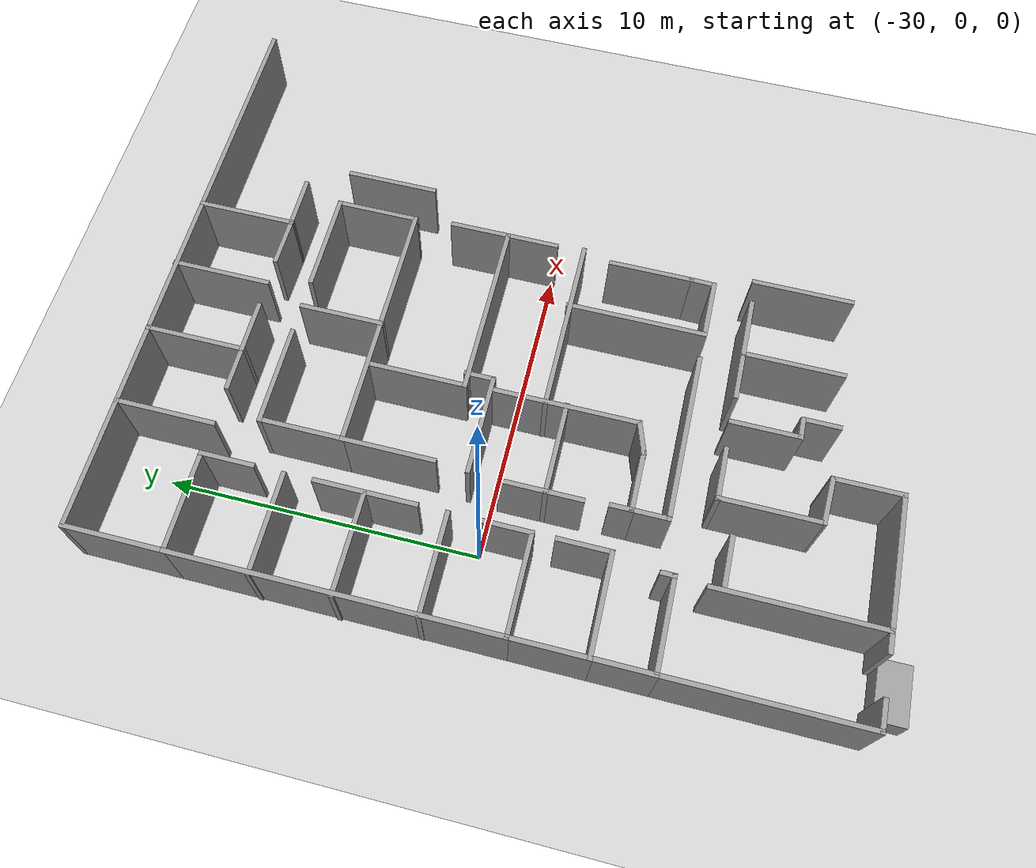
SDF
<sdf version="1.6">
 <world name="default">
  <model name="ground_plane">
   <static>1</static>
   <link name="link">
    <collision name="collision">
     <geometry><plane><normal>0 0 1</normal><size>100 100</size></plane></geometry>
     <surface>
      <contact><collide_bitmask>65535</collide_bitmask></contact>
      <friction><ode><mu>100</mu><mu2>50</mu2></ode></friction>
     </surface>
    </collision>
    <visual name="visual">
     <cast_shadows>0</cast_shadows>
     <geometry><plane><normal>0 0 1</normal><size>100 100</size></plane></geometry>
     <material>
      <script><uri>file://media/materials/scripts/gazebo.material</uri><name>Gazebo/Grey</name></script>
     </material>
    </visual>
   </link>
  </model>
  <model name="large_version">
   <pose>-3.01766 -0.701661 0 0 -0 0</pose>
   <link name="Wall_0">
    <collision name="Wall_0_Collision">
     <geometry><box><size>4.25 0.15 2.5</size></box></geometry>
     <pose>0 0 1.25 0 -0 0</pose>
    </collision>
    <visual name="Wall_0_Visual">
     <pose>0 0 1.25 0 -0 0</pose>
     <geometry><box><size>4.25 0.15 2.5</size></box></geometry>
     <material>
      <script><uri>file://media/materials/scripts/gazebo.material</uri><name>Gazebo/Grey</name></script>
      <ambient>1 1 1 1</ambient>
     </material>
     <meta><layer>0</layer></meta>
    </visual>
    <pose>-27.678 12.4158 0 0 -0 0</pose>
   </link>
   <link name="Wall_1">
    <collision name="Wall_1_Collision">
     <geometry><box><size>3.25 0.15 2.5</size></box></geometry>
     <pose>0 0 1.25 0 -0 0</pose>
    </collision>
    <visual name="Wall_1_Visual">
     <pose>0 0 1.25 0 -0 0</pose>
     <geometry><box><size>3.25 0.15 2.5</size></box></geometry>
     <material>
      <script><uri>file://media/materials/scripts/gazebo.material</uri><name>Gazebo/Grey</name></script>
      <ambient>1 1 1 1</ambient>
     </material>
     <meta><layer>0</layer></meta>
    </visual>
    <pose>-25.628 10.8658 0 0 -0 -1.5708</pose>
   </link>
   <link name="Wall_100">
    <collision name="Wall_100_Collision">
     <geometry><box><size>2 0.15 2.5</size></box></geometry>
     <pose>0 0 1.25 0 -0 0</pose>
    </collision>
    <visual name="Wall_100_Visual">
     <pose>0 0 1.25 0 -0 0</pose>
     <geometry><box><size>2 0.15 2.5</size></box></geometry>
     <material>
      <script><uri>file://media/materials/scripts/gazebo.material</uri><name>Gazebo/Grey</name></script>
      <ambient>1 1 1 1</ambient>
     </material>
     <meta><layer>0</layer></meta>
    </visual>
    <pose>-24.3238 -3.43296 0 0 -0 0</pose>
   </link>
   <link name="Wall_104">
    <collision name="Wall_104_Collision">
     <geometry><box><size>1.11552 0.15 2.5</size></box></geometry>
     <pose>0 0 1.25 0 -0 0</pose>
    </collision>
    <visual name="Wall_104_Visual">
     <pose>0 0 1.25 0 -0 0</pose>
     <geometry><box><size>1.11552 0.15 2.5</size></box></geometry>
     <material>
      <script><uri>file://media/materials/scripts/gazebo.material</uri><name>Gazebo/Grey</name></script>
      <ambient>1 1 1 1</ambient>
     </material>
     <meta><layer>0</layer></meta>
    </visual>
    <pose>-22.9396 -3.2841 0 0 -0 -2.82813</pose>
   </link>
   <link name="Wall_106">
    <collision name="Wall_106_Collision">
     <geometry><box><size>10.25 0.15 2.5</size></box></geometry>
     <pose>0 0 1.25 0 -0 0</pose>
    </collision>
    <visual name="Wall_106_Visual">
     <pose>0 0 1.25 0 -0 0</pose>
     <geometry><box><size>10.25 0.15 2.5</size></box></geometry>
     <material>
      <script><uri>file://media/materials/scripts/gazebo.material</uri><name>Gazebo/Grey</name></script>
      <ambient>1 1 1 1</ambient>
     </material>
     <meta><layer>0</layer></meta>
    </visual>
    <pose>-29.728 4.26583 0 0 -0 -1.5708</pose>
   </link>
   <link name="Wall_107">
    <collision name="Wall_107_Collision">
     <geometry><box><size>3.25 0.15 2.5</size></box></geometry>
     <pose>0 0 1.25 0 -0 0</pose>
    </collision>
    <visual name="Wall_107_Visual">
     <pose>0 0 1.25 0 -0 0</pose>
     <geometry><box><size>3.25 0.15 2.5</size></box></geometry>
     <material>
      <script><uri>file://media/materials/scripts/gazebo.material</uri><name>Gazebo/Grey</name></script>
      <ambient>1 1 1 1</ambient>
     </material>
     <meta><layer>0</layer></meta>
    </visual>
    <pose>-28.178 -0.784168 0 0 -0 0</pose>
   </link>
   <link name="Wall_108">
    <collision name="Wall_108_Collision">
     <geometry><box><size>1.75 0.15 2.5</size></box></geometry>
     <pose>0 0 1.25 0 -0 0</pose>
    </collision>
    <visual name="Wall_108_Visual">
     <pose>0 0 1.25 0 -0 0</pose>
     <geometry><box><size>1.75 0.15 2.5</size></box></geometry>
     <material>
      <script><uri>file://media/materials/scripts/gazebo.material</uri><name>Gazebo/Grey</name></script>
      <ambient>1 1 1 1</ambient>
     </material>
     <meta><layer>0</layer></meta>
    </visual>
    <pose>-26.628 0.015832 0 0 -0 1.5708</pose>
   </link>
   <link name="Wall_11">
    <collision name="Wall_11_Collision">
     <geometry><box><size>12.25 0.15 2.5</size></box></geometry>
     <pose>0 0 1.25 0 -0 0</pose>
    </collision>
    <visual name="Wall_11_Visual">
     <pose>0 0 1.25 0 -0 0</pose>
     <geometry><box><size>12.25 0.15 2.5</size></box></geometry>
     <material>
      <script><uri>file://media/materials/scripts/gazebo.material</uri><name>Gazebo/Grey</name></script>
      <ambient>1 1 1 1</ambient>
     </material>
     <meta><layer>0</layer></meta>
    </visual>
    <pose>-16.978 12.4158 0 0 -0 0</pose>
   </link>
   <link name="Wall_111">
    <collision name="Wall_111_Collision">
     <geometry><box><size>3.25 0.15 2.5</size></box></geometry>
     <pose>0 0 1.25 0 -0 0</pose>
    </collision>
    <visual name="Wall_111_Visual">
     <pose>0 0 1.25 0 -0 0</pose>
     <geometry><box><size>3.25 0.15 2.5</size></box></geometry>
     <material>
      <script><uri>file://media/materials/scripts/gazebo.material</uri><name>Gazebo/Grey</name></script>
      <ambient>1 1 1 1</ambient>
     </material>
     <meta><layer>0</layer></meta>
    </visual>
    <pose>-28.1916 1.72919 0 0 -0 3.14159</pose>
   </link>
   <link name="Wall_113">
    <collision name="Wall_113_Collision">
     <geometry><box><size>3.25 0.15 2.5</size></box></geometry>
     <pose>0 0 1.25 0 -0 0</pose>
    </collision>
    <visual name="Wall_113_Visual">
     <pose>0 0 1.25 0 -0 0</pose>
     <geometry><box><size>3.25 0.15 2.5</size></box></geometry>
     <material>
      <script><uri>file://media/materials/scripts/gazebo.material</uri><name>Gazebo/Grey</name></script>
      <ambient>1 1 1 1</ambient>
     </material>
     <meta><layer>0</layer></meta>
    </visual>
    <pose>-26.6242 4.2381 0 0 -0 1.5708</pose>
   </link>
   <link name="Wall_115">
    <collision name="Wall_115_Collision">
     <geometry><box><size>3.25 0.15 2.5</size></box></geometry>
     <pose>0 0 1.25 0 -0 0</pose>
    </collision>
    <visual name="Wall_115_Visual">
     <pose>0 0 1.25 0 -0 0</pose>
     <geometry><box><size>3.25 0.15 2.5</size></box></geometry>
     <material>
      <script><uri>file://media/materials/scripts/gazebo.material</uri><name>Gazebo/Grey</name></script>
      <ambient>1 1 1 1</ambient>
     </material>
     <meta><layer>0</layer></meta>
    </visual>
    <pose>-28.2299 4.25723 0 0 -0 0</pose>
   </link>
   <link name="Wall_117">
    <collision name="Wall_117_Collision">
     <geometry><box><size>3.25 0.15 2.5</size></box></geometry>
     <pose>0 0 1.25 0 -0 0</pose>
    </collision>
    <visual name="Wall_117_Visual">
     <pose>0 0 1.25 0 -0 0</pose>
     <geometry><box><size>3.25 0.15 2.5</size></box></geometry>
     <material>
      <script><uri>file://media/materials/scripts/gazebo.material</uri><name>Gazebo/Grey</name></script>
      <ambient>1 1 1 1</ambient>
     </material>
     <meta><layer>0</layer></meta>
    </visual>
    <pose>-28.2125 6.73297 0 0 -0 0</pose>
   </link>
   <link name="Wall_119">
    <collision name="Wall_119_Collision">
     <geometry><box><size>1.75 0.15 2.5</size></box></geometry>
     <pose>0 0 1.25 0 -0 0</pose>
    </collision>
    <visual name="Wall_119_Visual">
     <pose>0 0 1.25 0 -0 0</pose>
     <geometry><box><size>1.75 0.15 2.5</size></box></geometry>
     <material>
      <script><uri>file://media/materials/scripts/gazebo.material</uri><name>Gazebo/Grey</name></script>
      <ambient>1 1 1 1</ambient>
     </material>
     <meta><layer>0</layer></meta>
    </visual>
    <pose>-26.628 8.51583 0 0 -0 -1.5708</pose>
   </link>
   <link name="Wall_121">
    <collision name="Wall_121_Collision">
     <geometry><box><size>2.5 0.15 2.5</size></box></geometry>
     <pose>0 0 1.25 0 -0 0</pose>
    </collision>
    <visual name="Wall_121_Visual">
     <pose>0 0 1.25 0 -0 0</pose>
     <geometry><box><size>2.5 0.15 2.5</size></box></geometry>
     <material>
      <script><uri>file://media/materials/scripts/gazebo.material</uri><name>Gazebo/Grey</name></script>
      <ambient>1 1 1 1</ambient>
     </material>
     <meta><layer>0</layer></meta>
    </visual>
    <pose>-29.728 -1.95917 0 0 -0 -1.5708</pose>
   </link>
   <link name="Wall_122">
    <collision name="Wall_122_Collision">
     <geometry><box><size>3.25 0.15 2.5</size></box></geometry>
     <pose>0 0 1.25 0 -0 0</pose>
    </collision>
    <visual name="Wall_122_Visual">
     <pose>0 0 1.25 0 -0 0</pose>
     <geometry><box><size>3.25 0.15 2.5</size></box></geometry>
     <material>
      <script><uri>file://media/materials/scripts/gazebo.material</uri><name>Gazebo/Grey</name></script>
      <ambient>1 1 1 1</ambient>
     </material>
     <meta><layer>0</layer></meta>
    </visual>
    <pose>-28.178 -3.13417 0 0 -0 0</pose>
   </link>
   <link name="Wall_123">
    <collision name="Wall_123_Collision">
     <geometry><box><size>1.75 0.15 2.5</size></box></geometry>
     <pose>0 0 1.25 0 -0 0</pose>
    </collision>
    <visual name="Wall_123_Visual">
     <pose>0 0 1.25 0 -0 0</pose>
     <geometry><box><size>1.75 0.15 2.5</size></box></geometry>
     <material>
      <script><uri>file://media/materials/scripts/gazebo.material</uri><name>Gazebo/Grey</name></script>
      <ambient>1 1 1 1</ambient>
     </material>
     <meta><layer>0</layer></meta>
    </visual>
    <pose>-26.628 -2.33417 0 0 -0 1.5708</pose>
   </link>
   <link name="Wall_125">
    <collision name="Wall_125_Collision">
     <geometry><box><size>2 0.15 2.5</size></box></geometry>
     <pose>0 0 1.25 0 -0 0</pose>
    </collision>
    <visual name="Wall_125_Visual">
     <pose>0 0 1.25 0 -0 0</pose>
     <geometry><box><size>2 0.15 2.5</size></box></geometry>
     <material>
      <script><uri>file://media/materials/scripts/gazebo.material</uri><name>Gazebo/Grey</name></script>
      <ambient>1 1 1 1</ambient>
     </material>
     <meta><layer>0</layer></meta>
    </visual>
    <pose>-29.728 -4.05917 0 0 -0 -1.5708</pose>
   </link>
   <link name="Wall_126">
    <collision name="Wall_126_Collision">
     <geometry><box><size>3 0.15 2.5</size></box></geometry>
     <pose>0 0 1.25 0 -0 0</pose>
    </collision>
    <visual name="Wall_126_Visual">
     <pose>0 0 1.25 0 -0 0</pose>
     <geometry><box><size>3 0.15 2.5</size></box></geometry>
     <material>
      <script><uri>file://media/materials/scripts/gazebo.material</uri><name>Gazebo/Grey</name></script>
      <ambient>1 1 1 1</ambient>
     </material>
     <meta><layer>0</layer></meta>
    </visual>
    <pose>-28.303 -4.98417 0 0 -0 0</pose>
   </link>
   <link name="Wall_127">
    <collision name="Wall_127_Collision">
     <geometry><box><size>0.5 0.15 2.5</size></box></geometry>
     <pose>0 0 1.25 0 -0 0</pose>
    </collision>
    <visual name="Wall_127_Visual">
     <pose>0 0 1.25 0 -0 0</pose>
     <geometry><box><size>0.5 0.15 2.5</size></box></geometry>
     <material>
      <script><uri>file://media/materials/scripts/gazebo.material</uri><name>Gazebo/Grey</name></script>
      <ambient>1 1 1 1</ambient>
     </material>
     <meta><layer>0</layer></meta>
    </visual>
    <pose>-26.878 -4.80917 0 0 -0 1.5708</pose>
   </link>
   <link name="Wall_129">
    <collision name="Wall_129_Collision">
     <geometry><box><size>6.25 0.15 2.5</size></box></geometry>
     <pose>0 0 1.25 0 -0 0</pose>
    </collision>
    <visual name="Wall_129_Visual">
     <pose>0 0 1.25 0 -0 0</pose>
     <geometry><box><size>6.25 0.15 2.5</size></box></geometry>
     <material>
      <script><uri>file://media/materials/scripts/gazebo.material</uri><name>Gazebo/Grey</name></script>
      <ambient>1 1 1 1</ambient>
     </material>
     <meta><layer>0</layer></meta>
    </visual>
    <pose>-29.728 -8.03417 0 0 -0 -1.5708</pose>
   </link>
   <link name="Wall_130">
    <collision name="Wall_130_Collision">
     <geometry><box><size>1 0.15 2.5</size></box></geometry>
     <pose>0 0 1.25 0 -0 0</pose>
    </collision>
    <visual name="Wall_130_Visual">
     <pose>0 0 1.25 0 -0 0</pose>
     <geometry><box><size>1 0.15 2.5</size></box></geometry>
     <material>
      <script><uri>file://media/materials/scripts/gazebo.material</uri><name>Gazebo/Grey</name></script>
      <ambient>1 1 1 1</ambient>
     </material>
     <meta><layer>0</layer></meta>
    </visual>
    <pose>-29.303 -11.0842 0 0 -0 0</pose>
   </link>
   <link name="Wall_133">
    <collision name="Wall_133_Collision">
     <geometry><box><size>0.75 0.15 2.5</size></box></geometry>
     <pose>0 0 1.25 0 -0 0</pose>
    </collision>
    <visual name="Wall_133_Visual">
     <pose>0 0 1.25 0 -0 0</pose>
     <geometry><box><size>0.75 0.15 2.5</size></box></geometry>
     <material>
      <script><uri>file://media/materials/scripts/gazebo.material</uri><name>Gazebo/Grey</name></script>
      <ambient>1 1 1 1</ambient>
     </material>
     <meta><layer>0</layer></meta>
    </visual>
    <pose>-27.2477 -11.0917 0 0 -0 0</pose>
   </link>
   <link name="Wall_134">
    <collision name="Wall_134_Collision">
     <geometry><box><size>5.25 0.15 2.5</size></box></geometry>
     <pose>0 0 1.25 0 -0 0</pose>
    </collision>
    <visual name="Wall_134_Visual">
     <pose>0 0 1.25 0 -0 0</pose>
     <geometry><box><size>5.25 0.15 2.5</size></box></geometry>
     <material>
      <script><uri>file://media/materials/scripts/gazebo.material</uri><name>Gazebo/Grey</name></script>
      <ambient>1 1 1 1</ambient>
     </material>
     <meta><layer>0</layer></meta>
    </visual>
    <pose>-26.9477 -8.54166 0 0 -0 1.5708</pose>
   </link>
   <link name="Wall_136">
    <collision name="Wall_136_Collision">
     <geometry><box><size>4.25 0.15 2.5</size></box></geometry>
     <pose>0 0 1.25 0 -0 0</pose>
    </collision>
    <visual name="Wall_136_Visual">
     <pose>0 0 1.25 0 -0 0</pose>
     <geometry><box><size>4.25 0.15 2.5</size></box></geometry>
     <material>
      <script><uri>file://media/materials/scripts/gazebo.material</uri><name>Gazebo/Grey</name></script>
      <ambient>1 1 1 1</ambient>
     </material>
     <meta><layer>0</layer></meta>
    </visual>
    <pose>-24.8977 -11.0917 0 0 -0 0</pose>
   </link>
   <link name="Wall_137">
    <collision name="Wall_137_Collision">
     <geometry><box><size>2.25 0.15 2.5</size></box></geometry>
     <pose>0 0 1.25 0 -0 0</pose>
    </collision>
    <visual name="Wall_137_Visual">
     <pose>0 0 1.25 0 -0 0</pose>
     <geometry><box><size>2.25 0.15 2.5</size></box></geometry>
     <material>
      <script><uri>file://media/materials/scripts/gazebo.material</uri><name>Gazebo/Grey</name></script>
      <ambient>1 1 1 1</ambient>
     </material>
     <meta><layer>0</layer></meta>
    </visual>
    <pose>-22.8477 -10.0417 0 0 -0 1.5708</pose>
   </link>
   <link name="Wall_14">
    <collision name="Wall_14_Collision">
     <geometry><box><size>3.25 0.15 2.5</size></box></geometry>
     <pose>0 0 1.25 0 -0 0</pose>
    </collision>
    <visual name="Wall_14_Visual">
     <pose>0 0 1.25 0 -0 0</pose>
     <geometry><box><size>3.25 0.15 2.5</size></box></geometry>
     <material>
      <script><uri>file://media/materials/scripts/gazebo.material</uri><name>Gazebo/Grey</name></script>
      <ambient>1 1 1 1</ambient>
     </material>
     <meta><layer>0</layer></meta>
    </visual>
    <pose>-20.5677 10.8967 0 0 -0 -1.5708</pose>
   </link>
   <link name="Wall_140">
    <collision name="Wall_140_Collision">
     <geometry><box><size>1.75 0.15 2.5</size></box></geometry>
     <pose>0 0 1.25 0 -0 0</pose>
    </collision>
    <visual name="Wall_140_Visual">
     <pose>0 0 1.25 0 -0 0</pose>
     <geometry><box><size>1.75 0.15 2.5</size></box></geometry>
     <material>
      <script><uri>file://media/materials/scripts/gazebo.material</uri><name>Gazebo/Grey</name></script>
      <ambient>1 1 1 1</ambient>
     </material>
     <meta><layer>0</layer></meta>
    </visual>
    <pose>-26.1412 -6.39185 0 0 -0 0</pose>
   </link>
   <link name="Wall_142">
    <collision name="Wall_142_Collision">
     <geometry><box><size>3.25 0.15 2.5</size></box></geometry>
     <pose>0 0 1.25 0 -0 0</pose>
    </collision>
    <visual name="Wall_142_Visual">
     <pose>0 0 1.25 0 -0 0</pose>
     <geometry><box><size>3.25 0.15 2.5</size></box></geometry>
     <material>
      <script><uri>file://media/materials/scripts/gazebo.material</uri><name>Gazebo/Grey</name></script>
      <ambient>1 1 1 1</ambient>
     </material>
     <meta><layer>0</layer></meta>
    </visual>
    <pose>-24.273 -7.35059 0 0 -0 -1.5708</pose>
   </link>
   <link name="Wall_143">
    <collision name="Wall_143_Collision">
     <geometry><box><size>1.5782 0.15 2.5</size></box></geometry>
     <pose>0 0 1.25 0 -0 0</pose>
    </collision>
    <visual name="Wall_143_Visual">
     <pose>0 0 1.25 0 -0 0</pose>
     <geometry><box><size>1.5782 0.15 2.5</size></box></geometry>
     <material>
      <script><uri>file://media/materials/scripts/gazebo.material</uri><name>Gazebo/Grey</name></script>
      <ambient>1 1 1 1</ambient>
     </material>
     <meta><layer>0</layer></meta>
    </visual>
    <pose>-23.5603 -8.94612 0 0 -0 -0.063809</pose>
   </link>
   <link name="Wall_145">
    <collision name="Wall_145_Collision">
     <geometry><box><size>1.75 0.15 2.5</size></box></geometry>
     <pose>0 0 1.25 0 -0 0</pose>
    </collision>
    <visual name="Wall_145_Visual">
     <pose>0 0 1.25 0 -0 0</pose>
     <geometry><box><size>1.75 0.15 2.5</size></box></geometry>
     <material>
      <script><uri>file://media/materials/scripts/gazebo.material</uri><name>Gazebo/Grey</name></script>
      <ambient>1 1 1 1</ambient>
     </material>
     <meta><layer>0</layer></meta>
    </visual>
    <pose>-23.473 -5.80059 0 0 -0 0</pose>
   </link>
   <link name="Wall_147">
    <collision name="Wall_147_Collision">
     <geometry><box><size>2.25 0.15 2.5</size></box></geometry>
     <pose>0 0 1.25 0 -0 0</pose>
    </collision>
    <visual name="Wall_147_Visual">
     <pose>0 0 1.25 0 -0 0</pose>
     <geometry><box><size>2.25 0.15 2.5</size></box></geometry>
     <material>
      <script><uri>file://media/materials/scripts/gazebo.material</uri><name>Gazebo/Grey</name></script>
      <ambient>1 1 1 1</ambient>
     </material>
     <meta><layer>0</layer></meta>
    </visual>
    <pose>-21.7563 -6.85059 0 0 -0 -1.5708</pose>
   </link>
   <link name="Wall_148">
    <collision name="Wall_148_Collision">
     <geometry><box><size>0.75 0.15 2.5</size></box></geometry>
     <pose>0 0 1.25 0 -0 0</pose>
    </collision>
    <visual name="Wall_148_Visual">
     <pose>0 0 1.25 0 -0 0</pose>
     <geometry><box><size>0.75 0.15 2.5</size></box></geometry>
     <material>
      <script><uri>file://media/materials/scripts/gazebo.material</uri><name>Gazebo/Grey</name></script>
      <ambient>1 1 1 1</ambient>
     </material>
     <meta><layer>0</layer></meta>
    </visual>
    <pose>-21.4563 -7.90059 0 0 -0 0</pose>
   </link>
   <link name="Wall_149">
    <collision name="Wall_149_Collision">
     <geometry><box><size>1.25 0.15 2.5</size></box></geometry>
     <pose>0 0 1.25 0 -0 0</pose>
    </collision>
    <visual name="Wall_149_Visual">
     <pose>0 0 1.25 0 -0 0</pose>
     <geometry><box><size>1.25 0.15 2.5</size></box></geometry>
     <material>
      <script><uri>file://media/materials/scripts/gazebo.material</uri><name>Gazebo/Grey</name></script>
      <ambient>1 1 1 1</ambient>
     </material>
     <meta><layer>0</layer></meta>
    </visual>
    <pose>-21.1563 -8.45059 0 0 -0 -1.5708</pose>
   </link>
   <link name="Wall_151">
    <collision name="Wall_151_Collision">
     <geometry><box><size>3.5 0.15 2.5</size></box></geometry>
     <pose>0 0 1.25 0 -0 0</pose>
    </collision>
    <visual name="Wall_151_Visual">
     <pose>0 0 1.25 0 -0 0</pose>
     <geometry><box><size>3.5 0.15 2.5</size></box></geometry>
     <material>
      <script><uri>file://media/materials/scripts/gazebo.material</uri><name>Gazebo/Grey</name></script>
      <ambient>1 1 1 1</ambient>
     </material>
     <meta><layer>0</layer></meta>
    </visual>
    <pose>-19.202 -5.81575 0 0 -0 0</pose>
   </link>
   <link name="Wall_153">
    <collision name="Wall_153_Collision">
     <geometry><box><size>3.25 0.15 2.5</size></box></geometry>
     <pose>0 0 1.25 0 -0 0</pose>
    </collision>
    <visual name="Wall_153_Visual">
     <pose>0 0 1.25 0 -0 0</pose>
     <geometry><box><size>3.25 0.15 2.5</size></box></geometry>
     <material>
      <script><uri>file://media/materials/scripts/gazebo.material</uri><name>Gazebo/Grey</name></script>
      <ambient>1 1 1 1</ambient>
     </material>
     <meta><layer>0</layer></meta>
    </visual>
    <pose>-19.3761 -7.38091 0 0 -0 -1.5708</pose>
   </link>
   <link name="Wall_155">
    <collision name="Wall_155_Collision">
     <geometry><box><size>3.25 0.15 2.5</size></box></geometry>
     <pose>0 0 1.25 0 -0 0</pose>
    </collision>
    <visual name="Wall_155_Visual">
     <pose>0 0 1.25 0 -0 0</pose>
     <geometry><box><size>3.25 0.15 2.5</size></box></geometry>
     <material>
      <script><uri>file://media/materials/scripts/gazebo.material</uri><name>Gazebo/Grey</name></script>
      <ambient>1 1 1 1</ambient>
     </material>
     <meta><layer>0</layer></meta>
    </visual>
    <pose>-16.723 -7.33543 0 0 -0 -1.5708</pose>
   </link>
   <link name="Wall_16">
    <collision name="Wall_16_Collision">
     <geometry><box><size>3.25 0.15 2.5</size></box></geometry>
     <pose>0 0 1.25 0 -0 0</pose>
    </collision>
    <visual name="Wall_16_Visual">
     <pose>0 0 1.25 0 -0 0</pose>
     <geometry><box><size>3.25 0.15 2.5</size></box></geometry>
     <material>
      <script><uri>file://media/materials/scripts/gazebo.material</uri><name>Gazebo/Grey</name></script>
      <ambient>1 1 1 1</ambient>
     </material>
     <meta><layer>0</layer></meta>
    </visual>
    <pose>-18.1926 10.8707 0 0 -0 -1.5708</pose>
   </link>
   <link name="Wall_186">
    <collision name="Wall_186_Collision">
     <geometry><box><size>1.75 0.15 2.5</size></box></geometry>
     <pose>0 0 1.25 0 -0 0</pose>
    </collision>
    <visual name="Wall_186_Visual">
     <pose>0 0 1.25 0 -0 0</pose>
     <geometry><box><size>1.75 0.15 2.5</size></box></geometry>
     <material>
      <script><uri>file://media/materials/scripts/gazebo.material</uri><name>Gazebo/Grey</name></script>
      <ambient>1 1 1 1</ambient>
     </material>
     <meta><layer>0</layer></meta>
    </visual>
    <pose>-16.9493 1.48236 0 0 -0 -1.5708</pose>
   </link>
   <link name="Wall_188">
    <collision name="Wall_188_Collision">
     <geometry><box><size>5.75 0.15 2.5</size></box></geometry>
     <pose>0 0 1.25 0 -0 0</pose>
    </collision>
    <visual name="Wall_188_Visual">
     <pose>0 0 1.25 0 -0 0</pose>
     <geometry><box><size>5.75 0.15 2.5</size></box></geometry>
     <material>
      <script><uri>file://media/materials/scripts/gazebo.material</uri><name>Gazebo/Grey</name></script>
      <ambient>1 1 1 1</ambient>
     </material>
     <meta><layer>0</layer></meta>
    </visual>
    <pose>-19.6903 -0.240137 0 0 -0 0</pose>
   </link>
   <link name="Wall_190">
    <collision name="Wall_190_Collision">
     <geometry><box><size>1.25 0.15 2.5</size></box></geometry>
     <pose>0 0 1.25 0 -0 0</pose>
    </collision>
    <visual name="Wall_190_Visual">
     <pose>0 0 1.25 0 -0 0</pose>
     <geometry><box><size>1.25 0.15 2.5</size></box></geometry>
     <material>
      <script><uri>file://media/materials/scripts/gazebo.material</uri><name>Gazebo/Grey</name></script>
      <ambient>1 1 1 1</ambient>
     </material>
     <meta><layer>0</layer></meta>
    </visual>
    <pose>-25.2488 -3.98296 0 0 -0 -1.5708</pose>
   </link>
   <link name="Wall_191">
    <collision name="Wall_191_Collision">
     <geometry><box><size>5.5 0.15 2.5</size></box></geometry>
     <pose>0 0 1.25 0 -0 0</pose>
    </collision>
    <visual name="Wall_191_Visual">
     <pose>0 0 1.25 0 -0 0</pose>
     <geometry><box><size>5.5 0.15 2.5</size></box></geometry>
     <material>
      <script><uri>file://media/materials/scripts/gazebo.material</uri><name>Gazebo/Grey</name></script>
      <ambient>1 1 1 1</ambient>
     </material>
     <meta><layer>0</layer></meta>
    </visual>
    <pose>-22.5738 -4.53296 0 0 -0 0</pose>
   </link>
   <link name="Wall_195">
    <collision name="Wall_195_Collision">
     <geometry><box><size>4.5 0.15 2.5</size></box></geometry>
     <pose>0 0 1.25 0 -0 0</pose>
    </collision>
    <visual name="Wall_195_Visual">
     <pose>0 0 1.25 0 -0 0</pose>
     <geometry><box><size>4.5 0.15 2.5</size></box></geometry>
     <material>
      <script><uri>file://media/materials/scripts/gazebo.material</uri><name>Gazebo/Grey</name></script>
      <ambient>1 1 1 1</ambient>
     </material>
     <meta><layer>0</layer></meta>
    </visual>
    <pose>-19.007 -2.36781 0 0 -0 -1.5708</pose>
   </link>
   <link name="Wall_198">
    <collision name="Wall_198_Collision">
     <geometry><box><size>2.75 0.15 2.5</size></box></geometry>
     <pose>0 0 1.25 0 -0 0</pose>
    </collision>
    <visual name="Wall_198_Visual">
     <pose>0 0 1.25 0 -0 0</pose>
     <geometry><box><size>2.75 0.15 2.5</size></box></geometry>
     <material>
      <script><uri>file://media/materials/scripts/gazebo.material</uri><name>Gazebo/Grey</name></script>
      <ambient>1 1 1 1</ambient>
     </material>
     <meta><layer>0</layer></meta>
    </visual>
    <pose>-17.1418 -2.50105 0 0 -0 1.5708</pose>
   </link>
   <link name="Wall_200">
    <collision name="Wall_200_Collision">
     <geometry><box><size>2 0.15 2.5</size></box></geometry>
     <pose>0 0 1.25 0 -0 0</pose>
    </collision>
    <visual name="Wall_200_Visual">
     <pose>0 0 1.25 0 -0 0</pose>
     <geometry><box><size>2 0.15 2.5</size></box></geometry>
     <material>
      <script><uri>file://media/materials/scripts/gazebo.material</uri><name>Gazebo/Grey</name></script>
      <ambient>1 1 1 1</ambient>
     </material>
     <meta><layer>0</layer></meta>
    </visual>
    <pose>-18.082 -4.54281 0 0 -0 0</pose>
   </link>
   <link name="Wall_201">
    <collision name="Wall_201_Collision">
     <geometry><box><size>0.891917 0.15 2.5</size></box></geometry>
     <pose>0 0 1.25 0 -0 0</pose>
    </collision>
    <visual name="Wall_201_Visual">
     <pose>0 0 1.25 0 -0 0</pose>
     <geometry><box><size>0.891917 0.15 2.5</size></box></geometry>
     <material>
      <script><uri>file://media/materials/scripts/gazebo.material</uri><name>Gazebo/Grey</name></script>
      <ambient>1 1 1 1</ambient>
     </material>
     <meta><layer>0</layer></meta>
    </visual>
    <pose>-17.1494 -4.17193 0 0 -0 1.55036</pose>
   </link>
   <link name="Wall_22">
    <collision name="Wall_22_Collision">
     <geometry><box><size>1.75 0.15 2.5</size></box></geometry>
     <pose>0 0 1.25 0 -0 0</pose>
    </collision>
    <visual name="Wall_22_Visual">
     <pose>0 0 1.25 0 -0 0</pose>
     <geometry><box><size>1.75 0.15 2.5</size></box></geometry>
     <material>
      <script><uri>file://media/materials/scripts/gazebo.material</uri><name>Gazebo/Grey</name></script>
      <ambient>1 1 1 1</ambient>
     </material>
     <meta><layer>0</layer></meta>
    </visual>
    <pose>-22.228 9.31583 0 0 -0 0</pose>
   </link>
   <link name="Wall_24">
    <collision name="Wall_24_Collision">
     <geometry><box><size>1.65843 0.15 2.5</size></box></geometry>
     <pose>0 0 1.25 0 -0 0</pose>
    </collision>
    <visual name="Wall_24_Visual">
     <pose>0 0 1.25 0 -0 0</pose>
     <geometry><box><size>1.65843 0.15 2.5</size></box></geometry>
     <material>
      <script><uri>file://media/materials/scripts/gazebo.material</uri><name>Gazebo/Grey</name></script>
      <ambient>1 1 1 1</ambient>
     </material>
     <meta><layer>0</layer></meta>
    </visual>
    <pose>-18.9467 9.33213 0 0 -0 -0.015118</pose>
   </link>
   <link name="Wall_26">
    <collision name="Wall_26_Collision">
     <geometry><box><size>1.75 0.15 2.5</size></box></geometry>
     <pose>0 0 1.25 0 -0 0</pose>
    </collision>
    <visual name="Wall_26_Visual">
     <pose>0 0 1.25 0 -0 0</pose>
     <geometry><box><size>1.75 0.15 2.5</size></box></geometry>
     <material>
      <script><uri>file://media/materials/scripts/gazebo.material</uri><name>Gazebo/Grey</name></script>
      <ambient>1 1 1 1</ambient>
     </material>
     <meta><layer>0</layer></meta>
    </visual>
    <pose>-17.3926 9.32072 0 0 -0 0</pose>
   </link>
   <link name="Wall_3">
    <collision name="Wall_3_Collision">
     <geometry><box><size>3.25 0.15 2.5</size></box></geometry>
     <pose>0 0 1.25 0 -0 0</pose>
    </collision>
    <visual name="Wall_3_Visual">
     <pose>0 0 1.25 0 -0 0</pose>
     <geometry><box><size>3.25 0.15 2.5</size></box></geometry>
     <material>
      <script><uri>file://media/materials/scripts/gazebo.material</uri><name>Gazebo/Grey</name></script>
      <ambient>1 1 1 1</ambient>
     </material>
     <meta><layer>0</layer></meta>
    </visual>
    <pose>-29.728 10.8658 0 0 -0 -1.5708</pose>
   </link>
   <link name="Wall_4">
    <collision name="Wall_4_Collision">
     <geometry><box><size>3.25 0.15 2.5</size></box></geometry>
     <pose>0 0 1.25 0 -0 0</pose>
    </collision>
    <visual name="Wall_4_Visual">
     <pose>0 0 1.25 0 -0 0</pose>
     <geometry><box><size>3.25 0.15 2.5</size></box></geometry>
     <material>
      <script><uri>file://media/materials/scripts/gazebo.material</uri><name>Gazebo/Grey</name></script>
      <ambient>1 1 1 1</ambient>
     </material>
     <meta><layer>0</layer></meta>
    </visual>
    <pose>-28.178 9.31583 0 0 -0 0</pose>
   </link>
   <link name="Wall_6">
    <collision name="Wall_6_Collision">
     <geometry><box><size>2.75 0.15 2.5</size></box></geometry>
     <pose>0 0 1.25 0 -0 0</pose>
    </collision>
    <visual name="Wall_6_Visual">
     <pose>0 0 1.25 0 -0 0</pose>
     <geometry><box><size>2.75 0.15 2.5</size></box></geometry>
     <material>
      <script><uri>file://media/materials/scripts/gazebo.material</uri><name>Gazebo/Grey</name></script>
      <ambient>1 1 1 1</ambient>
     </material>
     <meta><layer>0</layer></meta>
    </visual>
    <pose>-24.328 12.4158 0 0 -0 0</pose>
   </link>
   <link name="Wall_61">
    <collision name="Wall_61_Collision">
     <geometry><box><size>3 0.15 2.5</size></box></geometry>
     <pose>0 0 1.25 0 -0 0</pose>
    </collision>
    <visual name="Wall_61_Visual">
     <pose>0 0 1.25 0 -0 0</pose>
     <geometry><box><size>3 0.15 2.5</size></box></geometry>
     <material>
      <script><uri>file://media/materials/scripts/gazebo.material</uri><name>Gazebo/Grey</name></script>
      <ambient>1 1 1 1</ambient>
     </material>
     <meta><layer>0</layer></meta>
    </visual>
    <pose>-15.8193 6.54286 0 0 -0 -1.5708</pose>
   </link>
   <link name="Wall_7">
    <collision name="Wall_7_Collision">
     <geometry><box><size>3.25 0.15 2.5</size></box></geometry>
     <pose>0 0 1.25 0 -0 0</pose>
    </collision>
    <visual name="Wall_7_Visual">
     <pose>0 0 1.25 0 -0 0</pose>
     <geometry><box><size>3.25 0.15 2.5</size></box></geometry>
     <material>
      <script><uri>file://media/materials/scripts/gazebo.material</uri><name>Gazebo/Grey</name></script>
      <ambient>1 1 1 1</ambient>
     </material>
     <meta><layer>0</layer></meta>
    </visual>
    <pose>-23.028 10.8658 0 0 -0 -1.5708</pose>
   </link>
   <link name="Wall_74">
    <collision name="Wall_74_Collision">
     <geometry><box><size>3.25 0.15 2.5</size></box></geometry>
     <pose>0 0 1.25 0 -0 0</pose>
    </collision>
    <visual name="Wall_74_Visual">
     <pose>0 0 1.25 0 -0 0</pose>
     <geometry><box><size>3.25 0.15 2.5</size></box></geometry>
     <material>
      <script><uri>file://media/materials/scripts/gazebo.material</uri><name>Gazebo/Grey</name></script>
      <ambient>1 1 1 1</ambient>
     </material>
     <meta><layer>0</layer></meta>
    </visual>
    <pose>-23.6151 7.99375 0 0 -0 3.14159</pose>
   </link>
   <link name="Wall_75">
    <collision name="Wall_75_Collision">
     <geometry><box><size>2.75 0.15 2.5</size></box></geometry>
     <pose>0 0 1.25 0 -0 0</pose>
    </collision>
    <visual name="Wall_75_Visual">
     <pose>0 0 1.25 0 -0 0</pose>
     <geometry><box><size>2.75 0.15 2.5</size></box></geometry>
     <material>
      <script><uri>file://media/materials/scripts/gazebo.material</uri><name>Gazebo/Grey</name></script>
      <ambient>1 1 1 1</ambient>
     </material>
     <meta><layer>0</layer></meta>
    </visual>
    <pose>-25.1651 6.69375 0 0 -0 -1.5708</pose>
   </link>
   <link name="Wall_76">
    <collision name="Wall_76_Collision">
     <geometry><box><size>8.25 0.15 2.5</size></box></geometry>
     <pose>0 0 1.25 0 -0 0</pose>
    </collision>
    <visual name="Wall_76_Visual">
     <pose>0 0 1.25 0 -0 0</pose>
     <geometry><box><size>8.25 0.15 2.5</size></box></geometry>
     <material>
      <script><uri>file://media/materials/scripts/gazebo.material</uri><name>Gazebo/Grey</name></script>
      <ambient>1 1 1 1</ambient>
     </material>
     <meta><layer>0</layer></meta>
    </visual>
    <pose>-21.1151 5.39375 0 0 -0 0</pose>
   </link>
   <link name="Wall_77">
    <collision name="Wall_77_Collision">
     <geometry><box><size>2.75 0.15 2.5</size></box></geometry>
     <pose>0 0 1.25 0 -0 0</pose>
    </collision>
    <visual name="Wall_77_Visual">
     <pose>0 0 1.25 0 -0 0</pose>
     <geometry><box><size>2.75 0.15 2.5</size></box></geometry>
     <material>
      <script><uri>file://media/materials/scripts/gazebo.material</uri><name>Gazebo/Grey</name></script>
      <ambient>1 1 1 1</ambient>
     </material>
     <meta><layer>0</layer></meta>
    </visual>
    <pose>-17.0651 6.69375 0 0 -0 1.5708</pose>
   </link>
   <link name="Wall_78">
    <collision name="Wall_78_Collision">
     <geometry><box><size>3.25 0.15 2.5</size></box></geometry>
     <pose>0 0 1.25 0 -0 0</pose>
    </collision>
    <visual name="Wall_78_Visual">
     <pose>0 0 1.25 0 -0 0</pose>
     <geometry><box><size>3.25 0.15 2.5</size></box></geometry>
     <material>
      <script><uri>file://media/materials/scripts/gazebo.material</uri><name>Gazebo/Grey</name></script>
      <ambient>1 1 1 1</ambient>
     </material>
     <meta><layer>0</layer></meta>
    </visual>
    <pose>-18.6151 7.99375 0 0 -0 3.14159</pose>
   </link>
   <link name="Wall_8">
    <collision name="Wall_8_Collision">
     <geometry><box><size>1.5 0.15 2.5</size></box></geometry>
     <pose>0 0 1.25 0 -0 0</pose>
    </collision>
    <visual name="Wall_8_Visual">
     <pose>0 0 1.25 0 -0 0</pose>
     <geometry><box><size>1.5 0.15 2.5</size></box></geometry>
     <material>
      <script><uri>file://media/materials/scripts/gazebo.material</uri><name>Gazebo/Grey</name></script>
      <ambient>1 1 1 1</ambient>
     </material>
     <meta><layer>0</layer></meta>
    </visual>
    <pose>-23.703 9.31583 0 0 -0 3.14159</pose>
   </link>
   <link name="Wall_80">
    <collision name="Wall_80_Collision">
     <geometry><box><size>2.75 0.15 2.5</size></box></geometry>
     <pose>0 0 1.25 0 -0 0</pose>
    </collision>
    <visual name="Wall_80_Visual">
     <pose>0 0 1.25 0 -0 0</pose>
     <geometry><box><size>2.75 0.15 2.5</size></box></geometry>
     <material>
      <script><uri>file://media/materials/scripts/gazebo.material</uri><name>Gazebo/Grey</name></script>
      <ambient>1 1 1 1</ambient>
     </material>
     <meta><layer>0</layer></meta>
    </visual>
    <pose>-21.1027 6.68057 0 0 -0 -1.5708</pose>
   </link>
   <link name="Wall_82">
    <collision name="Wall_82_Collision">
     <geometry><box><size>3 0.15 2.5</size></box></geometry>
     <pose>0 0 1.25 0 -0 0</pose>
    </collision>
    <visual name="Wall_82_Visual">
     <pose>0 0 1.25 0 -0 0</pose>
     <geometry><box><size>3 0.15 2.5</size></box></geometry>
     <material>
      <script><uri>file://media/materials/scripts/gazebo.material</uri><name>Gazebo/Grey</name></script>
      <ambient>1 1 1 1</ambient>
     </material>
     <meta><layer>0</layer></meta>
    </visual>
    <pose>-25.1651 3.96875 0 0 -0 -1.5708</pose>
   </link>
   <link name="Wall_84">
    <collision name="Wall_84_Collision">
     <geometry><box><size>3.25 0.15 2.5</size></box></geometry>
     <pose>0 0 1.25 0 -0 0</pose>
    </collision>
    <visual name="Wall_84_Visual">
     <pose>0 0 1.25 0 -0 0</pose>
     <geometry><box><size>3.25 0.15 2.5</size></box></geometry>
     <material>
      <script><uri>file://media/materials/scripts/gazebo.material</uri><name>Gazebo/Grey</name></script>
      <ambient>1 1 1 1</ambient>
     </material>
     <meta><layer>0</layer></meta>
    </visual>
    <pose>-22.5493 3.83236 0 0 -0 -1.5708</pose>
   </link>
   <link name="Wall_85">
    <collision name="Wall_85_Collision">
     <geometry><box><size>5.75 0.15 2.5</size></box></geometry>
     <pose>0 0 1.25 0 -0 0</pose>
    </collision>
    <visual name="Wall_85_Visual">
     <pose>0 0 1.25 0 -0 0</pose>
     <geometry><box><size>5.75 0.15 2.5</size></box></geometry>
     <material>
      <script><uri>file://media/materials/scripts/gazebo.material</uri><name>Gazebo/Grey</name></script>
      <ambient>1 1 1 1</ambient>
     </material>
     <meta><layer>0</layer></meta>
    </visual>
    <pose>-19.7493 2.28236 0 0 -0 0</pose>
   </link>
   <link name="Wall_86">
    <collision name="Wall_86_Collision">
     <geometry><box><size>2 0.15 2.5</size></box></geometry>
     <pose>0 0 1.25 0 -0 0</pose>
    </collision>
    <visual name="Wall_86_Visual">
     <pose>0 0 1.25 0 -0 0</pose>
     <geometry><box><size>2 0.15 2.5</size></box></geometry>
     <material>
      <script><uri>file://media/materials/scripts/gazebo.material</uri><name>Gazebo/Grey</name></script>
      <ambient>1 1 1 1</ambient>
     </material>
     <meta><layer>0</layer></meta>
    </visual>
    <pose>-16.9493 3.20736 0 0 -0 1.5708</pose>
   </link>
   <link name="Wall_88">
    <collision name="Wall_88_Collision">
     <geometry><box><size>3.25 0.15 2.5</size></box></geometry>
     <pose>0 0 1.25 0 -0 0</pose>
    </collision>
    <visual name="Wall_88_Visual">
     <pose>0 0 1.25 0 -0 0</pose>
     <geometry><box><size>3.25 0.15 2.5</size></box></geometry>
     <material>
      <script><uri>file://media/materials/scripts/gazebo.material</uri><name>Gazebo/Grey</name></script>
      <ambient>1 1 1 1</ambient>
     </material>
     <meta><layer>0</layer></meta>
    </visual>
    <pose>-23.6827 1.48607 0 0 -0 0</pose>
   </link>
   <link name="Wall_90">
    <collision name="Wall_90_Collision">
     <geometry><box><size>1 0.15 2.5</size></box></geometry>
     <pose>0 0 1.25 0 -0 0</pose>
    </collision>
    <visual name="Wall_90_Visual">
     <pose>0 0 1.25 0 -0 0</pose>
     <geometry><box><size>1 0.15 2.5</size></box></geometry>
     <material>
      <script><uri>file://media/materials/scripts/gazebo.material</uri><name>Gazebo/Grey</name></script>
      <ambient>1 1 1 1</ambient>
     </material>
     <meta><layer>0</layer></meta>
    </visual>
    <pose>-22.1327 1.91107 0 0 -0 1.5708</pose>
   </link>
   <link name="Wall_92">
    <collision name="Wall_92_Collision">
     <geometry><box><size>4.75 0.15 2.5</size></box></geometry>
     <pose>0 0 1.25 0 -0 0</pose>
    </collision>
    <visual name="Wall_92_Visual">
     <pose>0 0 1.25 0 -0 0</pose>
     <geometry><box><size>4.75 0.15 2.5</size></box></geometry>
     <material>
      <script><uri>file://media/materials/scripts/gazebo.material</uri><name>Gazebo/Grey</name></script>
      <ambient>1 1 1 1</ambient>
     </material>
     <meta><layer>0</layer></meta>
    </visual>
    <pose>-22.4803 -0.835242 0 0 -0 -1.5708</pose>
   </link>
   <link name="Wall_94">
    <collision name="Wall_94_Collision">
     <geometry><box><size>3 0.15 2.5</size></box></geometry>
     <pose>0 0 1.25 0 -0 0</pose>
    </collision>
    <visual name="Wall_94_Visual">
     <pose>0 0 1.25 0 -0 0</pose>
     <geometry><box><size>3 0.15 2.5</size></box></geometry>
     <material>
      <script><uri>file://media/materials/scripts/gazebo.material</uri><name>Gazebo/Grey</name></script>
      <ambient>1 1 1 1</ambient>
     </material>
     <meta><layer>0</layer></meta>
    </visual>
    <pose>-23.879 -0.881849 0 0 -0 3.14159</pose>
   </link>
   <link name="Wall_95">
    <collision name="Wall_95_Collision">
     <geometry><box><size>1.5 0.15 2.5</size></box></geometry>
     <pose>0 0 1.25 0 -0 0</pose>
    </collision>
    <visual name="Wall_95_Visual">
     <pose>0 0 1.25 0 -0 0</pose>
     <geometry><box><size>1.5 0.15 2.5</size></box></geometry>
     <material>
      <script><uri>file://media/materials/scripts/gazebo.material</uri><name>Gazebo/Grey</name></script>
      <ambient>1 1 1 1</ambient>
     </material>
     <meta><layer>0</layer></meta>
    </visual>
    <pose>-25.304 -0.206849 0 0 -0 1.5708</pose>
   </link>
   <link name="Wall_97">
    <collision name="Wall_97_Collision">
     <geometry><box><size>1.25 0.15 2.5</size></box></geometry>
     <pose>0 0 1.25 0 -0 0</pose>
    </collision>
    <visual name="Wall_97_Visual">
     <pose>0 0 1.25 0 -0 0</pose>
     <geometry><box><size>1.25 0.15 2.5</size></box></geometry>
     <material>
      <script><uri>file://media/materials/scripts/gazebo.material</uri><name>Gazebo/Grey</name></script>
      <ambient>1 1 1 1</ambient>
     </material>
     <meta><layer>0</layer></meta>
    </visual>
    <pose>-25.304 -1.43185 0 0 -0 -1.5708</pose>
   </link>
   <link name="Wall_99">
    <collision name="Wall_99_Collision">
     <geometry><box><size>0.75 0.15 2.5</size></box></geometry>
     <pose>0 0 1.25 0 -0 0</pose>
    </collision>
    <visual name="Wall_99_Visual">
     <pose>0 0 1.25 0 -0 0</pose>
     <geometry><box><size>0.75 0.15 2.5</size></box></geometry>
     <material>
      <script><uri>file://media/materials/scripts/gazebo.material</uri><name>Gazebo/Grey</name></script>
      <ambient>1 1 1 1</ambient>
     </material>
     <meta><layer>0</layer></meta>
    </visual>
    <pose>-25.2488 -3.13296 0 0 -0 -1.5708</pose>
   </link>
   <static>1</static>
  </model>
  <model name="unit_box">
   <pose>-31.244 -12.3727 0.499995 -6e-06 2e-06 -1e-06</pose>
   <link name="link">
    <inertial>
     <mass>1</mass>
     <inertia>
      <ixx>0.166667</ixx>
      <ixy>0</ixy>
      <ixz>0</ixz>
      <iyy>0.166667</iyy>
      <iyz>0</iyz>
      <izz>0.166667</izz>
     </inertia>
    </inertial>
    <collision name="collision"><geometry><box><size>1.79558 1 1</size></box></geometry></collision>
    <visual name="visual">
     <geometry><box><size>1.79558 1 1</size></box></geometry>
     <material>
      <script><name>Gazebo/Grey</name><uri>file://media/materials/scripts/gazebo.material</uri></script>
     </material>
    </visual>
   </link>
  </model>
 </world>
</sdf>
